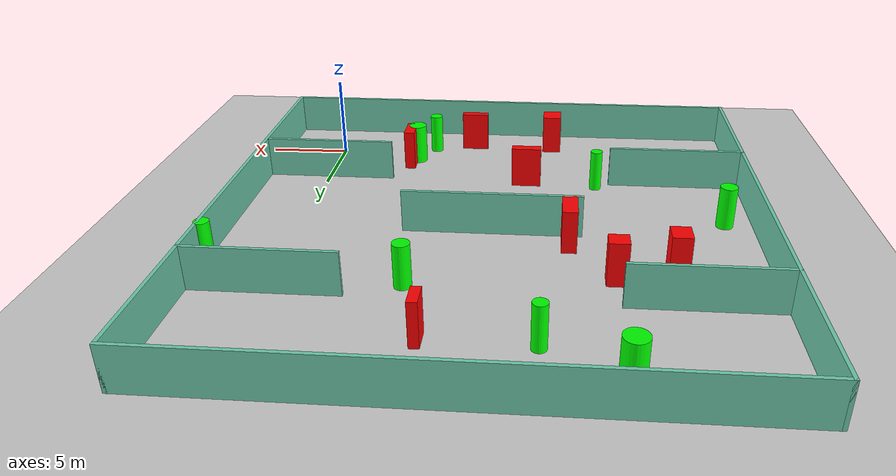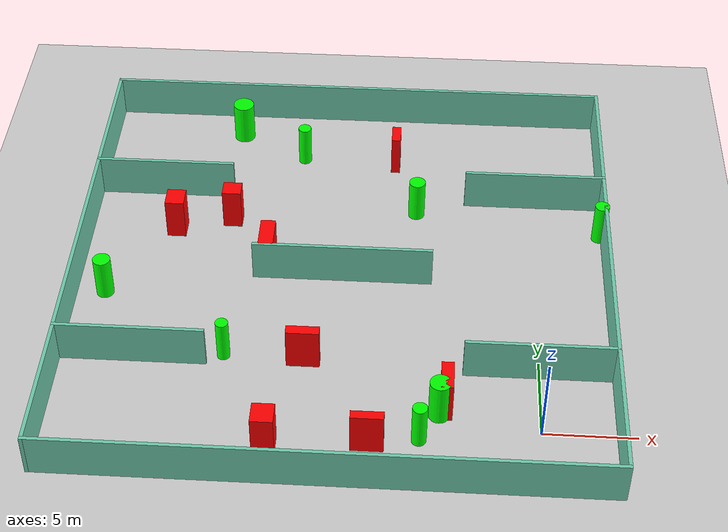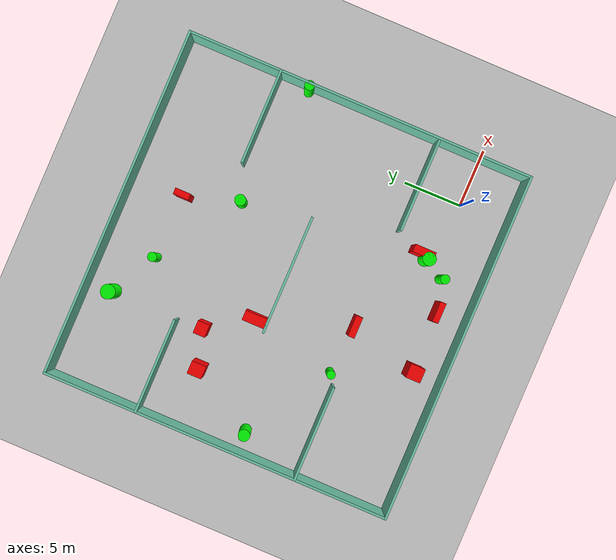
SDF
<sdf version="1.7">
 <world name="default">
  <light name="sun" type="directional">
   <pose>0 0 10 0 -0 0</pose>
   <diffuse>0.8 0.8 0.8 1</diffuse>
   <specular>0.2 0.2 0.2 1</specular>
   <attenuation>
    <range>1000</range>
    <constant>0.9</constant>
    <linear>0.01</linear>
    <quadratic>0.001</quadratic>
   </attenuation>
   <direction>-0.5 0.1 -0.9</direction>
   <spot><inner_angle>0</inner_angle><outer_angle>0</outer_angle><falloff>0</falloff></spot>
  </light>
  <model name="ground_plane">
   <static>1</static>
   <link name="link">
    <collision name="collision">
     <geometry><plane><normal>0 0 1</normal><size>100 100</size></plane></geometry>
     <surface>
      <contact><collide_bitmask>65535</collide_bitmask></contact>
      <friction><ode><mu>100</mu><mu2>50</mu2></ode></friction>
     </surface>
    </collision>
    <visual name="visual">
     <cast_shadows>0</cast_shadows>
     <geometry><plane><normal>0 0 1</normal><size>100 100</size></plane></geometry>
     <material>
      <script><uri>file://media/materials/scripts/gazebo.material</uri><name>Gazebo/Grey</name></script>
     </material>
    </visual>
   </link>
  </model>
  <gravity>0 0 -9.8</gravity>
  <magnetic_field>6e-06 2.3e-05 -4.2e-05</magnetic_field>
  <atmosphere type="adiabatic"/>
  <physics type="ode">
   <max_step_size>0.001</max_step_size>
   <real_time_factor>1</real_time_factor>
   <real_time_update_rate>1000</real_time_update_rate>
  </physics>
  <scene><ambient>0.4 0.4 0.4 1</ambient><background>0.7 0.7 0.7 1</background><shadows>1</shadows></scene>
  <spherical_coordinates>
   <surface_model>EARTH_WGS84</surface_model>
   <latitude_deg>0</latitude_deg>
   <longitude_deg>0</longitude_deg>
   <elevation>0</elevation>
   <heading_deg>0</heading_deg>
  </spherical_coordinates>
  <model name="my_base_walls">
   <link name="Wall_10">
    <collision name="Wall_10_Collision">
     <geometry><box><size>8.2 0.2 2.5</size></box></geometry>
     <pose>0 0 1.25 0 -0 0</pose>
    </collision>
    <visual name="Wall_10_Visual">
     <pose>0 0 1.25 0 -0 0</pose>
     <geometry><box><size>8.2 0.2 2.5</size></box></geometry>
     <material>
      <script><uri>file://media/materials/scripts/gazebo.material</uri><name>Gazebo/Grey</name></script>
      <ambient>0.435294 0.796078 0.67451 1</ambient>
     </material>
     <meta><layer>0</layer></meta>
    </visual>
    <pose>-11 -7 0 0 -0 0</pose>
   </link>
   <link name="Wall_12">
    <collision name="Wall_12_Collision">
     <geometry><box><size>8.2 0.2 2.5</size></box></geometry>
     <pose>0 0 1.25 0 -0 0</pose>
    </collision>
    <visual name="Wall_12_Visual">
     <pose>0 0 1.25 0 -0 0</pose>
     <geometry><box><size>8.2 0.2 2.5</size></box></geometry>
     <material>
      <script><uri>file://media/materials/scripts/gazebo.material</uri><name>Gazebo/Grey</name></script>
      <ambient>0.435294 0.796078 0.67451 1</ambient>
     </material>
     <meta><layer>0</layer></meta>
    </visual>
    <pose>-11 7 0 0 -0 0</pose>
   </link>
   <link name="Wall_14">
    <collision name="Wall_14_Collision">
     <geometry><box><size>8.2 0.2 2.5</size></box></geometry>
     <pose>0 0 1.25 0 -0 0</pose>
    </collision>
    <visual name="Wall_14_Visual">
     <pose>0 0 1.25 0 -0 0</pose>
     <geometry><box><size>8.2 0.2 2.5</size></box></geometry>
     <material>
      <script><uri>file://media/materials/scripts/gazebo.material</uri><name>Gazebo/Grey</name></script>
      <ambient>0.435294 0.796078 0.67451 1</ambient>
     </material>
     <meta><layer>0</layer></meta>
    </visual>
    <pose>11 7 0 0 -0 3.14159</pose>
   </link>
   <link name="Wall_16">
    <collision name="Wall_16_Collision">
     <geometry><box><size>10.2 0.2 2.5</size></box></geometry>
     <pose>0 0 1.25 0 -0 0</pose>
    </collision>
    <visual name="Wall_16_Visual">
     <pose>0 0 1.25 0 -0 0</pose>
     <geometry><box><size>10.2 0.2 2.5</size></box></geometry>
     <material>
      <script><uri>file://media/materials/scripts/gazebo.material</uri><name>Gazebo/Grey</name></script>
      <ambient>0.435294 0.796078 0.67451 1</ambient>
     </material>
     <meta><layer>0</layer></meta>
    </visual>
    <pose>0 0 0 0 -0 3.14159</pose>
   </link>
   <link name="Wall_2">
    <collision name="Wall_2_Collision">
     <geometry><box><size>30.2 0.2 2.5</size></box></geometry>
     <pose>0 0 1.25 0 -0 0</pose>
    </collision>
    <visual name="Wall_2_Visual">
     <pose>0 0 1.25 0 -0 0</pose>
     <geometry><box><size>30.2 0.2 2.5</size></box></geometry>
     <material>
      <script><uri>file://media/materials/scripts/gazebo.material</uri><name>Gazebo/Grey</name></script>
      <ambient>0.435294 0.796078 0.67451 1</ambient>
     </material>
     <meta><layer>0</layer></meta>
    </visual>
    <pose>0 -15 0 0 -0 3.14159</pose>
   </link>
   <link name="Wall_3">
    <collision name="Wall_3_Collision">
     <geometry><box><size>30.2 0.2 2.5</size></box></geometry>
     <pose>0 0 1.25 0 -0 0</pose>
    </collision>
    <visual name="Wall_3_Visual">
     <pose>0 0 1.25 0 -0 0</pose>
     <geometry><box><size>30.2 0.2 2.5</size></box></geometry>
     <material>
      <script><uri>file://media/materials/scripts/gazebo.material</uri><name>Gazebo/Grey</name></script>
      <ambient>0.435294 0.796078 0.67451 1</ambient>
     </material>
     <meta><layer>0</layer></meta>
    </visual>
    <pose>-15 0 0 0 -0 1.5708</pose>
   </link>
   <link name="Wall_4">
    <collision name="Wall_4_Collision">
     <geometry><box><size>30.2 0.2 2.5</size></box></geometry>
     <pose>0 0 1.25 0 -0 0</pose>
    </collision>
    <visual name="Wall_4_Visual">
     <pose>0 0 1.25 0 -0 0</pose>
     <geometry><box><size>30.2 0.2 2.5</size></box></geometry>
     <material>
      <script><uri>file://media/materials/scripts/gazebo.material</uri><name>Gazebo/Grey</name></script>
      <ambient>0.435294 0.796078 0.67451 1</ambient>
     </material>
     <meta><layer>0</layer></meta>
    </visual>
    <pose>0 15 0 0 -0 0</pose>
   </link>
   <link name="Wall_6">
    <collision name="Wall_6_Collision">
     <geometry><box><size>30.2 0.2 2.5</size></box></geometry>
     <pose>0 0 1.25 0 -0 0</pose>
    </collision>
    <visual name="Wall_6_Visual">
     <pose>0 0 1.25 0 -0 0</pose>
     <geometry><box><size>30.2 0.2 2.5</size></box></geometry>
     <material>
      <script><uri>file://media/materials/scripts/gazebo.material</uri><name>Gazebo/Grey</name></script>
      <ambient>0.435294 0.796078 0.67451 1</ambient>
     </material>
     <meta><layer>0</layer></meta>
    </visual>
    <pose>15 0 0 0 -0 1.5708</pose>
   </link>
   <link name="Wall_8">
    <collision name="Wall_8_Collision">
     <geometry><box><size>8.2 0.2 2.5</size></box></geometry>
     <pose>0 0 1.25 0 -0 0</pose>
    </collision>
    <visual name="Wall_8_Visual">
     <pose>0 0 1.25 0 -0 0</pose>
     <geometry><box><size>8.2 0.2 2.5</size></box></geometry>
     <material>
      <script><uri>file://media/materials/scripts/gazebo.material</uri><name>Gazebo/Grey</name></script>
      <ambient>0.435294 0.796078 0.67451 1</ambient>
     </material>
     <meta><layer>0</layer></meta>
    </visual>
    <pose>11 -7 0 0 -0 3.14159</pose>
   </link>
   <static>1</static>
   <pose>-11 11 0 0 -0 0</pose>
  </model>
  <model name="cylinder1">
   <static>1</static>
   <link name="link">
    <inertial>
     <mass>1</mass>
     <inertia><ixx>0.5</ixx><ixy>0</ixy><ixz>0</ixz><iyy>0.5</iyy><iyz>0</iyz><izz>1</izz></inertia>
    </inertial>
    <collision name="collision">
     <geometry><cylinder><radius>0.5693339729323978</radius><length>2.5</length></cylinder></geometry>
    </collision>
    <visual name="visual">
     <geometry><cylinder><radius>0.5693339729323978</radius><length>2.5</length></cylinder></geometry>
     <material>
      <ambient>0 1 0 1</ambient>
      <diffuse>0 1 0 1</diffuse>
      <specular>0.1 0.1 0.1 1</specular>
      <emissive>0 0 0 0</emissive>
     </material>
    </visual>
   </link>
   <pose>-5.307226769941714 0.982477554624364 1.25 0 0 0</pose>
  </model>
  <model name="cylinder2">
   <static>1</static>
   <link name="link">
    <inertial>
     <mass>1</mass>
     <inertia><ixx>0.5</ixx><ixy>0</ixy><ixz>0</ixz><iyy>0.5</iyy><iyz>0</iyz><izz>1</izz></inertia>
    </inertial>
    <collision name="collision">
     <geometry><cylinder><radius>0.4729425045673886</radius><length>2.5</length></cylinder></geometry>
    </collision>
    <visual name="visual">
     <geometry><cylinder><radius>0.4729425045673886</radius><length>2.5</length></cylinder></geometry>
     <material>
      <ambient>0 1 0 1</ambient>
      <diffuse>0 1 0 1</diffuse>
      <specular>0.1 0.1 0.1 1</specular>
      <emissive>0 0 0 0</emissive>
     </material>
    </visual>
   </link>
   <pose>-6.933492781732074 16.915994765644747 1.25 0 0 0</pose>
  </model>
  <model name="cylinder3">
   <static>1</static>
   <link name="link">
    <inertial>
     <mass>1</mass>
     <inertia><ixx>0.5</ixx><ixy>0</ixy><ixz>0</ixz><iyy>0.5</iyy><iyz>0</iyz><izz>1</izz></inertia>
    </inertial>
    <collision name="collision">
     <geometry><cylinder><radius>0.38568382215261365</radius><length>2.5</length></cylinder></geometry>
    </collision>
    <visual name="visual">
     <geometry><cylinder><radius>0.38568382215261365</radius><length>2.5</length></cylinder></geometry>
     <material>
      <ambient>0 1 0 1</ambient>
      <diffuse>0 1 0 1</diffuse>
      <specular>0.1 0.1 0.1 1</specular>
      <emissive>0 0 0 0</emissive>
     </material>
    </visual>
   </link>
   <pose>-13.942190388681475 21.66061366862753 1.25 0 0 0</pose>
  </model>
  <model name="cylinder4">
   <static>1</static>
   <link name="link">
    <inertial>
     <mass>1</mass>
     <inertia><ixx>0.5</ixx><ixy>0</ixy><ixz>0</ixz><iyy>0.5</iyy><iyz>0</iyz><izz>1</izz></inertia>
    </inertial>
    <collision name="collision">
     <geometry><cylinder><radius>0.622987058929992</radius><length>2.5</length></cylinder></geometry>
    </collision>
    <visual name="visual">
     <geometry><cylinder><radius>0.622987058929992</radius><length>2.5</length></cylinder></geometry>
     <material>
      <ambient>0 1 0 1</ambient>
      <diffuse>0 1 0 1</diffuse>
      <specular>0.1 0.1 0.1 1</specular>
      <emissive>0 0 0 0</emissive>
     </material>
    </visual>
   </link>
   <pose>-17.937384819835792 23.847006836513348 1.25 0 0 0</pose>
  </model>
  <model name="cylinder5">
   <static>1</static>
   <link name="link">
    <inertial>
     <mass>1</mass>
     <inertia><ixx>0.5</ixx><ixy>0</ixy><ixz>0</ixz><iyy>0.5</iyy><iyz>0</iyz><izz>1</izz></inertia>
    </inertial>
    <collision name="collision">
     <geometry><cylinder><radius>0.4952569379096986</radius><length>2.5</length></cylinder></geometry>
    </collision>
    <visual name="visual">
     <geometry><cylinder><radius>0.4952569379096986</radius><length>2.5</length></cylinder></geometry>
     <material>
      <ambient>0 1 0 1</ambient>
      <diffuse>0 1 0 1</diffuse>
      <specular>0.1 0.1 0.1 1</specular>
      <emissive>0 0 0 0</emissive>
     </material>
    </visual>
   </link>
   <pose>-24.30132781013853 9.162026707387023 1.25 0 0 0</pose>
  </model>
  <model name="cylinder6">
   <static>1</static>
   <link name="link">
    <inertial>
     <mass>1</mass>
     <inertia><ixx>0.5</ixx><ixy>0</ixy><ixz>0</ixz><iyy>0.5</iyy><iyz>0</iyz><izz>1</izz></inertia>
    </inertial>
    <collision name="collision">
     <geometry><cylinder><radius>0.41583631078391475</radius><length>2.5</length></cylinder></geometry>
    </collision>
    <visual name="visual">
     <geometry><cylinder><radius>0.41583631078391475</radius><length>2.5</length></cylinder></geometry>
     <material>
      <ambient>0 1 0 1</ambient>
      <diffuse>0 1 0 1</diffuse>
      <specular>0.1 0.1 0.1 1</specular>
      <emissive>0 0 0 0</emissive>
     </material>
    </visual>
   </link>
   <pose>3.789688041872438 15.399496928071091 1.25 0 0 0</pose>
  </model>
  <model name="cylinder7">
   <static>1</static>
   <link name="link">
    <inertial>
     <mass>1</mass>
     <inertia><ixx>0.5</ixx><ixy>0</ixy><ixz>0</ixz><iyy>0.5</iyy><iyz>0</iyz><izz>1</izz></inertia>
    </inertial>
    <collision name="collision">
     <geometry><cylinder><radius>0.35590142590616636</radius><length>2.5</length></cylinder></geometry>
    </collision>
    <visual name="visual">
     <geometry><cylinder><radius>0.35590142590616636</radius><length>2.5</length></cylinder></geometry>
     <material>
      <ambient>0 1 0 1</ambient>
      <diffuse>0 1 0 1</diffuse>
      <specular>0.1 0.1 0.1 1</specular>
      <emissive>0 0 0 0</emissive>
     </material>
    </visual>
   </link>
   <pose>-17.04164817055232 4.612054150680885 1.25 0 0 0</pose>
  </model>
  <model name="cylinder8">
   <static>1</static>
   <link name="link">
    <inertial>
     <mass>1</mass>
     <inertia><ixx>0.5</ixx><ixy>0</ixy><ixz>0</ixz><iyy>0.5</iyy><iyz>0</iyz><izz>1</izz></inertia>
    </inertial>
    <collision name="collision">
     <geometry><cylinder><radius>0.39412178745733817</radius><length>2.5</length></cylinder></geometry>
    </collision>
    <visual name="visual">
     <geometry><cylinder><radius>0.39412178745733817</radius><length>2.5</length></cylinder></geometry>
     <material>
      <ambient>0 1 0 1</ambient>
      <diffuse>0 1 0 1</diffuse>
      <specular>0.1 0.1 0.1 1</specular>
      <emissive>0 0 0 0</emissive>
     </material>
    </visual>
   </link>
   <pose>-6.320445239967421 -0.8249326170454752 1.25 0 0 0</pose>
  </model>
  <model name="box1">
   <static>1</static>
   <link name="link">
    <inertial>
     <mass>1</mass>
     <inertia><ixx>0.083</ixx><ixy>0</ixy><ixz>0</ixz><iyy>0.083</iyy><iyz>0</iyz><izz>0.083</izz></inertia>
    </inertial>
    <collision name="collision">
     <geometry><box><size>1.0887176830744605 1.2442839084979798 2.5</size></box></geometry>
    </collision>
    <visual name="visual">
     <geometry><box><size>1.0887176830744605 1.2442839084979798 2.5</size></box></geometry>
     <material>
      <ambient>1 0 0 1</ambient>
      <diffuse>1 0 0 1</diffuse>
      <specular>0.1 0.1 0.1 1</specular>
      <emissive>0 0 0 0</emissive>
     </material>
    </visual>
    <sensor name="my_contact" type="contact">
     <contact><collision>box_collision</collision><topic>__default_topic__</topic></contact>
    </sensor>
   </link>
   <pose>-20.94080503935165 14.76425751816425 1.25 0 0 0</pose>
  </model>
  <model name="box2">
   <static>1</static>
   <link name="link">
    <inertial>
     <mass>1</mass>
     <inertia><ixx>0.083</ixx><ixy>0</ixy><ixz>0</ixz><iyy>0.083</iyy><iyz>0</iyz><izz>0.083</izz></inertia>
    </inertial>
    <collision name="collision">
     <geometry><box><size>1.732470086831418 0.5011152710133951 2.5</size></box></geometry>
    </collision>
    <visual name="visual">
     <geometry><box><size>1.732470086831418 0.5011152710133951 2.5</size></box></geometry>
     <material>
      <ambient>1 0 0 1</ambient>
      <diffuse>1 0 0 1</diffuse>
      <specular>0.1 0.1 0.1 1</specular>
      <emissive>0 0 0 0</emissive>
     </material>
    </visual>
    <sensor name="my_contact" type="contact">
     <contact><collision>box_collision</collision><topic>__default_topic__</topic></contact>
    </sensor>
   </link>
   <pose>-8.965148755030528 -1.4536239971539366 1.25 0 0 0</pose>
  </model>
  <model name="box3">
   <static>1</static>
   <link name="link">
    <inertial>
     <mass>1</mass>
     <inertia><ixx>0.083</ixx><ixy>0</ixy><ixz>0</ixz><iyy>0.083</iyy><iyz>0</iyz><izz>0.083</izz></inertia>
    </inertial>
    <collision name="collision">
     <geometry><box><size>1.1940628411304433 1.257157257047609 2.5</size></box></geometry>
    </collision>
    <visual name="visual">
     <geometry><box><size>1.1940628411304433 1.257157257047609 2.5</size></box></geometry>
     <material>
      <ambient>1 0 0 1</ambient>
      <diffuse>1 0 0 1</diffuse>
      <specular>0.1 0.1 0.1 1</specular>
      <emissive>0 0 0 0</emissive>
     </material>
    </visual>
    <sensor name="my_contact" type="contact">
     <contact><collision>box_collision</collision><topic>__default_topic__</topic></contact>
    </sensor>
   </link>
   <pose>-14.241689864890652 -1.6200507971660616 1.25 0 0 0</pose>
  </model>
  <model name="box4">
   <static>1</static>
   <link name="link">
    <inertial>
     <mass>1</mass>
     <inertia><ixx>0.083</ixx><ixy>0</ixy><ixz>0</ixz><iyy>0.083</iyy><iyz>0</iyz><izz>0.083</izz></inertia>
    </inertial>
    <collision name="collision">
     <geometry><box><size>0.530577681299859 1.3340333091983 2.5</size></box></geometry>
    </collision>
    <visual name="visual">
     <geometry><box><size>0.530577681299859 1.3340333091983 2.5</size></box></geometry>
     <material>
      <ambient>1 0 0 1</ambient>
      <diffuse>1 0 0 1</diffuse>
      <specular>0.1 0.1 0.1 1</specular>
      <emissive>0 0 0 0</emissive>
     </material>
    </visual>
    <sensor name="my_contact" type="contact">
     <contact><collision>box_collision</collision><topic>__default_topic__</topic></contact>
    </sensor>
   </link>
   <pose>-8.323873058216842 21.448005242622983 1.25 0 0 0</pose>
  </model>
  <model name="box5">
   <static>1</static>
   <link name="link">
    <inertial>
     <mass>1</mass>
     <inertia><ixx>0.083</ixx><ixy>0</ixy><ixz>0</ixz><iyy>0.083</iyy><iyz>0</iyz><izz>0.083</izz></inertia>
    </inertial>
    <collision name="collision">
     <geometry><box><size>1.0913709650980947 1.0149158317706921 2.5</size></box></geometry>
    </collision>
    <visual name="visual">
     <geometry><box><size>1.0913709650980947 1.0149158317706921 2.5</size></box></geometry>
     <material>
      <ambient>1 0 0 1</ambient>
      <diffuse>1 0 0 1</diffuse>
      <specular>0.1 0.1 0.1 1</specular>
      <emissive>0 0 0 0</emissive>
     </material>
    </visual>
    <sensor name="my_contact" type="contact">
     <contact><collision>box_collision</collision><topic>__default_topic__</topic></contact>
    </sensor>
   </link>
   <pose>-17.739823095907283 15.717988718410815 1.25 0 0 0</pose>
  </model>
  <model name="box6">
   <static>1</static>
   <link name="link">
    <inertial>
     <mass>1</mass>
     <inertia><ixx>0.083</ixx><ixy>0</ixy><ixz>0</ixz><iyy>0.083</iyy><iyz>0</iyz><izz>0.083</izz></inertia>
    </inertial>
    <collision name="collision">
     <geometry><box><size>0.8505845093466742 1.9478928940498603 2.5</size></box></geometry>
    </collision>
    <visual name="visual">
     <geometry><box><size>0.8505845093466742 1.9478928940498603 2.5</size></box></geometry>
     <material>
      <ambient>1 0 0 1</ambient>
      <diffuse>1 0 0 1</diffuse>
      <specular>0.1 0.1 0.1 1</specular>
      <emissive>0 0 0 0</emissive>
     </material>
    </visual>
    <sensor name="my_contact" type="contact">
     <contact><collision>box_collision</collision><topic>__default_topic__</topic></contact>
    </sensor>
   </link>
   <pose>-15.339906054487559 12.026317889925764 1.25 0 0 0</pose>
  </model>
  <model name="box7">
   <static>1</static>
   <link name="link">
    <inertial>
     <mass>1</mass>
     <inertia><ixx>0.083</ixx><ixy>0</ixy><ixz>0</ixz><iyy>0.083</iyy><iyz>0</iyz><izz>0.083</izz></inertia>
    </inertial>
    <collision name="collision">
     <geometry><box><size>1.8073309093893788 0.5674490810364083 2.5</size></box></geometry>
    </collision>
    <visual name="visual">
     <geometry><box><size>1.8073309093893788 0.5674490810364083 2.5</size></box></geometry>
     <material>
      <ambient>1 0 0 1</ambient>
      <diffuse>1 0 0 1</diffuse>
      <specular>0.1 0.1 0.1 1</specular>
      <emissive>0 0 0 0</emissive>
     </material>
    </visual>
    <sensor name="my_contact" type="contact">
     <contact><collision>box_collision</collision><topic>__default_topic__</topic></contact>
    </sensor>
   </link>
   <pose>-12.695874967827208 4.329504002890026 1.25 0 0 0</pose>
  </model>
  <model name="box8">
   <static>1</static>
   <link name="link">
    <inertial>
     <mass>1</mass>
     <inertia><ixx>0.083</ixx><ixy>0</ixy><ixz>0</ixz><iyy>0.083</iyy><iyz>0</iyz><izz>0.083</izz></inertia>
    </inertial>
    <collision name="collision">
     <geometry><box><size>0.6563441680671701 1.8171332778139386 2.5</size></box></geometry>
    </collision>
    <visual name="visual">
     <geometry><box><size>0.6563441680671701 1.8171332778139386 2.5</size></box></geometry>
     <material>
      <ambient>1 0 0 1</ambient>
      <diffuse>1 0 0 1</diffuse>
      <specular>0.1 0.1 0.1 1</specular>
      <emissive>0 0 0 0</emissive>
     </material>
    </visual>
    <sensor name="my_contact" type="contact">
     <contact><collision>box_collision</collision><topic>__default_topic__</topic></contact>
    </sensor>
   </link>
   <pose>-4.947678167644455 1.5620566334103545 1.25 0 0 0</pose>
  </model>
 </world>
</sdf>
